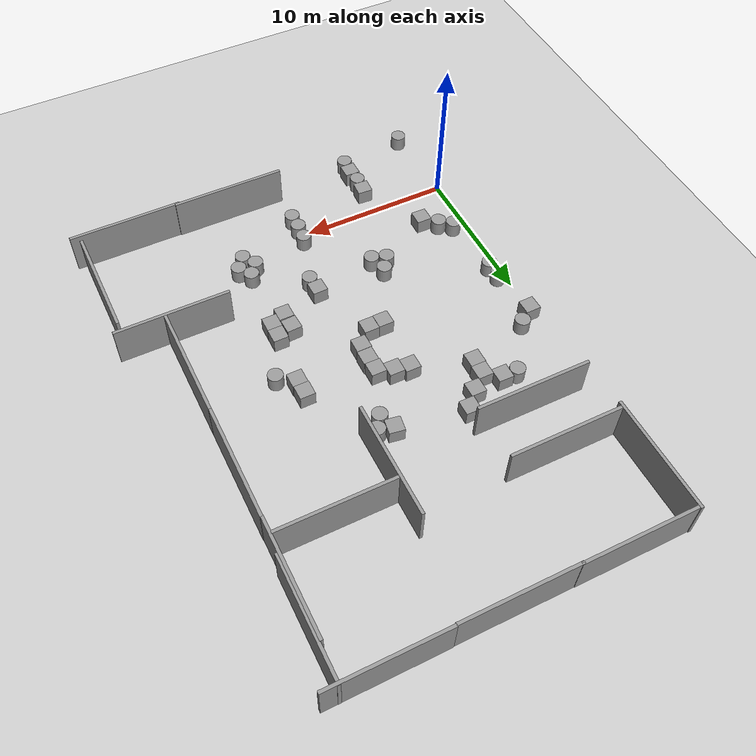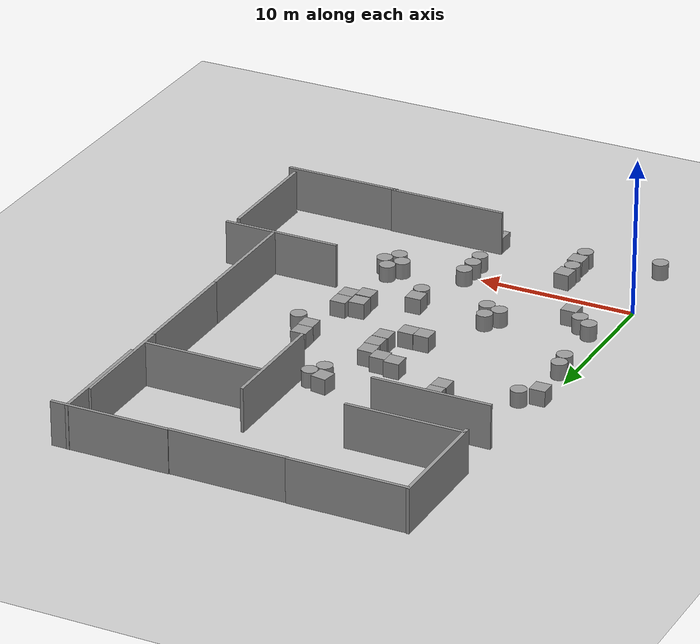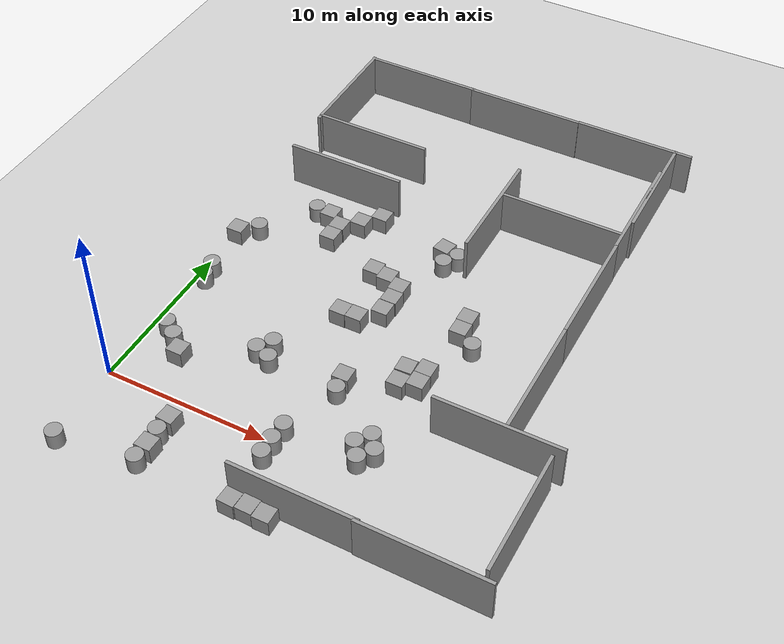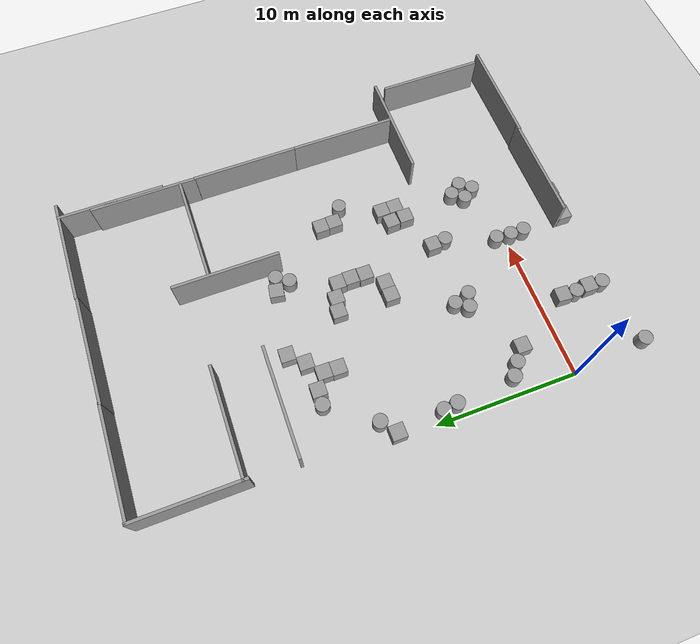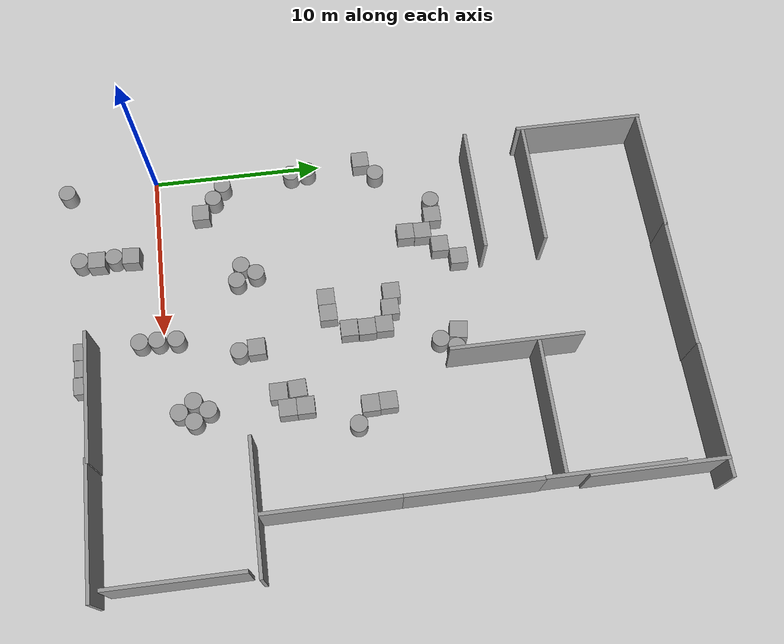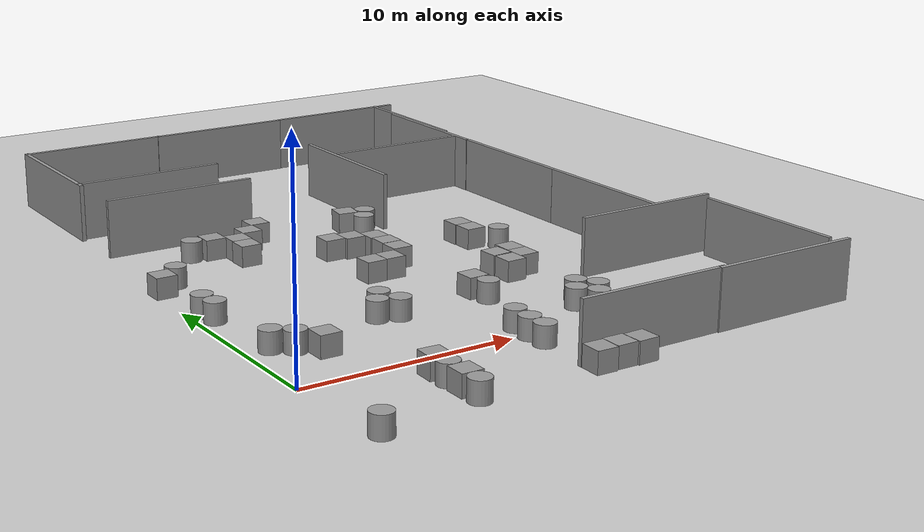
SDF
<sdf version="1.6">
 <world name="default">
  <model name="ground_plane">
   <static>1</static>
   <link name="link">
    <collision name="collision">
     <geometry><plane><normal>0 0 1</normal><size>100 100</size></plane></geometry>
     <surface><friction><ode><mu>100</mu><mu2>50</mu2></ode></friction></surface>
    </collision>
    <visual name="visual">
     <cast_shadows>0</cast_shadows>
     <geometry><plane><normal>0 0 1</normal><size>100 100</size></plane></geometry>
     <material>
      <script><uri>file://media/materials/scripts/gazebo.material</uri><name>Gazebo/Grey</name></script>
     </material>
    </visual>
   </link>
  </model>
  <model name="unit_cylinder_0">
   <pose>10.6658 -0.256071 0.499942 0 0 -3.1e-05</pose>
   <link name="link">
    <inertial>
     <mass>1</mass>
     <inertia><ixx>0.145833</ixx><ixy>0</ixy><ixz>0</ixz><iyy>0.145833</iyy><iyz>0</iyz><izz>0.125</izz></inertia>
    </inertial>
    <collision name="collision">
     <geometry><cylinder><radius>0.5</radius><length>1</length></cylinder></geometry>
    </collision>
    <visual name="visual">
     <geometry><cylinder><radius>0.5</radius><length>1</length></cylinder></geometry>
     <material>
      <script><name>Gazebo/Grey</name><uri>file://media/materials/scripts/gazebo.material</uri></script>
     </material>
    </visual>
   </link>
  </model>
  <model name="unit_cylinder_3">
   <pose>10.6756 -1.25603 0.499942 0 0 -5.6e-05</pose>
   <link name="link">
    <inertial>
     <mass>1</mass>
     <inertia><ixx>0.145833</ixx><ixy>0</ixy><ixz>0</ixz><iyy>0.145833</iyy><iyz>0</iyz><izz>0.125</izz></inertia>
    </inertial>
    <collision name="collision">
     <geometry><cylinder><radius>0.5</radius><length>1</length></cylinder></geometry>
    </collision>
    <visual name="visual">
     <geometry><cylinder><radius>0.5</radius><length>1</length></cylinder></geometry>
     <material>
      <script><name>Gazebo/Grey</name><uri>file://media/materials/scripts/gazebo.material</uri></script>
     </material>
    </visual>
   </link>
  </model>
  <model name="unit_cylinder_4">
   <pose>10.7381 0.821389 0.499942 0 -0 0</pose>
   <link name="link">
    <inertial>
     <mass>1</mass>
     <inertia><ixx>0.145833</ixx><ixy>0</ixy><ixz>0</ixz><iyy>0.145833</iyy><iyz>0</iyz><izz>0.125</izz></inertia>
    </inertial>
    <collision name="collision">
     <geometry><cylinder><radius>0.5</radius><length>1</length></cylinder></geometry>
    </collision>
    <visual name="visual">
     <geometry><cylinder><radius>0.5</radius><length>1</length></cylinder></geometry>
     <material>
      <script><name>Gazebo/Grey</name><uri>file://media/materials/scripts/gazebo.material</uri></script>
     </material>
    </visual>
   </link>
  </model>
  <model name="unit_box_9">
   <pose>2.80573 2.69051 0.5 0 0 -0.00823</pose>
   <link name="link">
    <inertial>
     <mass>1</mass>
     <inertia>
      <ixx>0.166667</ixx>
      <ixy>0</ixy>
      <ixz>0</ixz>
      <iyy>0.166667</iyy>
      <iyz>0</iyz>
      <izz>0.166667</izz>
     </inertia>
    </inertial>
    <collision name="collision"><geometry><box><size>1 1 1</size></box></geometry></collision>
    <visual name="visual">
     <geometry><box><size>1 1 1</size></box></geometry>
     <material>
      <script><name>Gazebo/Grey</name><uri>file://media/materials/scripts/gazebo.material</uri></script>
     </material>
    </visual>
   </link>
  </model>
  <model name="unit_box_12">
   <pose>5.15719 -1.54455 0.5 0 0 -0.056719</pose>
   <link name="link">
    <inertial>
     <mass>1</mass>
     <inertia>
      <ixx>0.166667</ixx>
      <ixy>0</ixy>
      <ixz>0</ixz>
      <iyy>0.166667</iyy>
      <iyz>0</iyz>
      <izz>0.166667</izz>
     </inertia>
    </inertial>
    <collision name="collision"><geometry><box><size>1 1 1</size></box></geometry></collision>
    <visual name="visual">
     <geometry><box><size>1 1 1</size></box></geometry>
     <material>
      <script><name>Gazebo/Grey</name><uri>file://media/materials/scripts/gazebo.material</uri></script>
     </material>
    </visual>
   </link>
  </model>
  <model name="unit_cylinder_8_1">
   <pose>5.09818 -2.54286 0.499942 0 0 -0.000551</pose>
   <link name="link">
    <inertial>
     <mass>1</mass>
     <inertia><ixx>0.145833</ixx><ixy>0</ixy><ixz>0</ixz><iyy>0.145833</iyy><iyz>0</iyz><izz>0.125</izz></inertia>
    </inertial>
    <collision name="collision">
     <geometry><cylinder><radius>0.5</radius><length>1</length></cylinder></geometry>
    </collision>
    <visual name="visual">
     <geometry><cylinder><radius>0.5</radius><length>1</length></cylinder></geometry>
     <material>
      <script><name>Gazebo/Grey</name><uri>file://media/materials/scripts/gazebo.material</uri></script>
     </material>
    </visual>
   </link>
  </model>
  <model name="unit_box_13">
   <pose>5.186 -3.54449 0.5 0 0 -0.016738</pose>
   <link name="link">
    <inertial>
     <mass>1</mass>
     <inertia>
      <ixx>0.166667</ixx>
      <ixy>0</ixy>
      <ixz>0</ixz>
      <iyy>0.166667</iyy>
      <iyz>0</iyz>
      <izz>0.166667</izz>
     </inertia>
    </inertial>
    <collision name="collision"><geometry><box><size>1 1 1</size></box></geometry></collision>
    <visual name="visual">
     <geometry><box><size>1 1 1</size></box></geometry>
     <material>
      <script><name>Gazebo/Grey</name><uri>file://media/materials/scripts/gazebo.material</uri></script>
     </material>
    </visual>
   </link>
  </model>
  <model name="unit_cylinder_8_2">
   <pose>5.13166 -4.54376 0.499942 0 0 -0.000328</pose>
   <link name="link">
    <inertial>
     <mass>1</mass>
     <inertia><ixx>0.145833</ixx><ixy>0</ixy><ixz>0</ixz><iyy>0.145833</iyy><iyz>0</iyz><izz>0.125</izz></inertia>
    </inertial>
    <collision name="collision">
     <geometry><cylinder><radius>0.5</radius><length>1</length></cylinder></geometry>
    </collision>
    <visual name="visual">
     <geometry><cylinder><radius>0.5</radius><length>1</length></cylinder></geometry>
     <material>
      <script><name>Gazebo/Grey</name><uri>file://media/materials/scripts/gazebo.material</uri></script>
     </material>
    </visual>
   </link>
  </model>
  <model name="unit_box_23">
   <pose>9.27784 13.3025 0.5 0 0 -0.004142</pose>
   <link name="link">
    <inertial>
     <mass>1</mass>
     <inertia>
      <ixx>0.166667</ixx>
      <ixy>0</ixy>
      <ixz>0</ixz>
      <iyy>0.166667</iyy>
      <iyz>0</iyz>
      <izz>0.166667</izz>
     </inertia>
    </inertial>
    <collision name="collision"><geometry><box><size>1 1 1</size></box></geometry></collision>
    <visual name="visual">
     <geometry><box><size>1 1 1</size></box></geometry>
     <material>
      <script><name>Gazebo/Grey</name><uri>file://media/materials/scripts/gazebo.material</uri></script>
     </material>
    </visual>
   </link>
  </model>
  <model name="unit_cylinder_13">
   <pose>14.5459 1.57194 0.499942 0 -0 0.013715</pose>
   <link name="link">
    <inertial>
     <mass>1</mass>
     <inertia><ixx>0.145833</ixx><ixy>0</ixy><ixz>0</ixz><iyy>0.145833</iyy><iyz>0</iyz><izz>0.125</izz></inertia>
    </inertial>
    <collision name="collision">
     <geometry><cylinder><radius>0.5</radius><length>1</length></cylinder></geometry>
    </collision>
    <visual name="visual">
     <geometry><cylinder><radius>0.5</radius><length>1</length></cylinder></geometry>
     <material>
      <script><name>Gazebo/Grey</name><uri>file://media/materials/scripts/gazebo.material</uri></script>
     </material>
    </visual>
   </link>
  </model>
  <model name="unit_cylinder_19">
   <pose>15.725 1.55357 0.499942 0 -0 0.002059</pose>
   <link name="link">
    <inertial>
     <mass>1</mass>
     <inertia><ixx>0.145833</ixx><ixy>0</ixy><ixz>0</ixz><iyy>0.145833</iyy><iyz>0</iyz><izz>0.125</izz></inertia>
    </inertial>
    <collision name="collision">
     <geometry><cylinder><radius>0.5</radius><length>1</length></cylinder></geometry>
    </collision>
    <visual name="visual">
     <geometry><cylinder><radius>0.5</radius><length>1</length></cylinder></geometry>
     <material>
      <script><name>Gazebo/Grey</name><uri>file://media/materials/scripts/gazebo.material</uri></script>
     </material>
    </visual>
   </link>
  </model>
  <model name="unit_box_30">
   <pose>15.8822 11.2878 0.5 0 -0 0.004435</pose>
   <link name="link">
    <inertial>
     <mass>1</mass>
     <inertia>
      <ixx>0.166667</ixx>
      <ixy>0</ixy>
      <ixz>0</ixz>
      <iyy>0.166667</iyy>
      <iyz>0</iyz>
      <izz>0.166667</izz>
     </inertia>
    </inertial>
    <collision name="collision"><geometry><box><size>1 1 1</size></box></geometry></collision>
    <visual name="visual">
     <geometry><box><size>1 1 1</size></box></geometry>
     <material>
      <script><name>Gazebo/Grey</name><uri>file://media/materials/scripts/gazebo.material</uri></script>
     </material>
    </visual>
   </link>
  </model>
  <model name="unit_cylinder_20">
   <pose>16.9697 10.5115 0.499942 0 -0 0</pose>
   <link name="link">
    <inertial>
     <mass>1</mass>
     <inertia><ixx>0.145833</ixx><ixy>0</ixy><ixz>0</ixz><iyy>0.145833</iyy><iyz>0</iyz><izz>0.125</izz></inertia>
    </inertial>
    <collision name="collision">
     <geometry><cylinder><radius>0.5</radius><length>1</length></cylinder></geometry>
    </collision>
    <visual name="visual">
     <geometry><cylinder><radius>0.5</radius><length>1</length></cylinder></geometry>
     <material>
      <script><name>Gazebo/Grey</name><uri>file://media/materials/scripts/gazebo.material</uri></script>
     </material>
    </visual>
   </link>
  </model>
  <model name="unit_box_32">
   <pose>10.2771 13.1126 0.5 0 0 -0.00417</pose>
   <link name="link">
    <inertial>
     <mass>1</mass>
     <inertia>
      <ixx>0.166667</ixx>
      <ixy>0</ixy>
      <ixz>0</ixz>
      <iyy>0.166667</iyy>
      <iyz>0</iyz>
      <izz>0.166667</izz>
     </inertia>
    </inertial>
    <collision name="collision"><geometry><box><size>1 1 1</size></box></geometry></collision>
    <visual name="visual">
     <geometry><box><size>1 1 1</size></box></geometry>
     <material>
      <script><name>Gazebo/Grey</name><uri>file://media/materials/scripts/gazebo.material</uri></script>
     </material>
    </visual>
   </link>
  </model>
  <model name="unit_box_24_0">
   <pose>14.5253 7.36912 0.5 0 -0 0.049836</pose>
   <link name="link">
    <inertial>
     <mass>1</mass>
     <inertia>
      <ixx>0.166667</ixx>
      <ixy>0</ixy>
      <ixz>0</ixz>
      <iyy>0.166667</iyy>
      <iyz>0</iyz>
      <izz>0.166667</izz>
     </inertia>
    </inertial>
    <collision name="collision"><geometry><box><size>1 1 1</size></box></geometry></collision>
    <visual name="visual">
     <geometry><box><size>1 1 1</size></box></geometry>
     <material>
      <script><name>Gazebo/Grey</name><uri>file://media/materials/scripts/gazebo.material</uri></script>
     </material>
    </visual>
   </link>
  </model>
  <model name="unit_box_24_1">
   <pose>14.5739 6.30414 0.5 0 -0 0.003533</pose>
   <link name="link">
    <inertial>
     <mass>1</mass>
     <inertia>
      <ixx>0.166667</ixx>
      <ixy>0</ixy>
      <ixz>0</ixz>
      <iyy>0.166667</iyy>
      <iyz>0</iyz>
      <izz>0.166667</izz>
     </inertia>
    </inertial>
    <collision name="collision"><geometry><box><size>1 1 1</size></box></geometry></collision>
    <visual name="visual">
     <geometry><box><size>1 1 1</size></box></geometry>
     <material>
      <script><name>Gazebo/Grey</name><uri>file://media/materials/scripts/gazebo.material</uri></script>
     </material>
    </visual>
   </link>
  </model>
  <model name="unit_box_20_1">
   <pose>12.1469 16.8043 0.5 0 0 -0.153938</pose>
   <link name="link">
    <inertial>
     <mass>1</mass>
     <inertia>
      <ixx>0.166667</ixx>
      <ixy>0</ixy>
      <ixz>0</ixz>
      <iyy>0.166667</iyy>
      <iyz>0</iyz>
      <izz>0.166667</izz>
     </inertia>
    </inertial>
    <collision name="collision"><geometry><box><size>1 1 1</size></box></geometry></collision>
    <visual name="visual">
     <geometry><box><size>1 1 1</size></box></geometry>
     <material>
      <script><name>Gazebo/Grey</name><uri>file://media/materials/scripts/gazebo.material</uri></script>
     </material>
    </visual>
   </link>
  </model>
  <model name="unit_cylinder_43">
   <pose>13.1335 16.5527 0.499942 0 -0 0.038735</pose>
   <link name="link">
    <inertial>
     <mass>1</mass>
     <inertia><ixx>0.145833</ixx><ixy>0</ixy><ixz>0</ixz><iyy>0.145833</iyy><iyz>0</iyz><izz>0.125</izz></inertia>
    </inertial>
    <collision name="collision">
     <geometry><cylinder><radius>0.5</radius><length>1</length></cylinder></geometry>
    </collision>
    <visual name="visual">
     <geometry><cylinder><radius>0.5</radius><length>1</length></cylinder></geometry>
     <material>
      <script><name>Gazebo/Grey</name><uri>file://media/materials/scripts/gazebo.material</uri></script>
     </material>
    </visual>
   </link>
  </model>
  <model name="unit_cylinder_44">
   <pose>12.5787 15.7207 0.499942 0 -0 0.000156</pose>
   <link name="link">
    <inertial>
     <mass>1</mass>
     <inertia><ixx>0.145833</ixx><ixy>0</ixy><ixz>0</ixz><iyy>0.145833</iyy><iyz>0</iyz><izz>0.125</izz></inertia>
    </inertial>
    <collision name="collision">
     <geometry><cylinder><radius>0.5</radius><length>1</length></cylinder></geometry>
    </collision>
    <visual name="visual">
     <geometry><cylinder><radius>0.5</radius><length>1</length></cylinder></geometry>
     <material>
      <script><name>Gazebo/Grey</name><uri>file://media/materials/scripts/gazebo.material</uri></script>
     </material>
    </visual>
   </link>
  </model>
  <model name="unit_box_20">
   <pose>15.846 12.2877 0.5 0 -0 0.004439</pose>
   <link name="link">
    <inertial>
     <mass>1</mass>
     <inertia>
      <ixx>0.166667</ixx>
      <ixy>0</ixy>
      <ixz>0</ixz>
      <iyy>0.166667</iyy>
      <iyz>0</iyz>
      <izz>0.166667</izz>
     </inertia>
    </inertial>
    <collision name="collision"><geometry><box><size>1 1 1</size></box></geometry></collision>
    <visual name="visual">
     <geometry><box><size>1 1 1</size></box></geometry>
     <material>
      <script><name>Gazebo/Grey</name><uri>file://media/materials/scripts/gazebo.material</uri></script>
     </material>
    </visual>
   </link>
  </model>
  <model name="unit_box_31_0">
   <pose>15.5731 6.71888 0.5 0 -0 0.002358</pose>
   <link name="link">
    <inertial>
     <mass>1</mass>
     <inertia>
      <ixx>0.166667</ixx>
      <ixy>0</ixy>
      <ixz>0</ixz>
      <iyy>0.166667</iyy>
      <iyz>0</iyz>
      <izz>0.166667</izz>
     </inertia>
    </inertial>
    <collision name="collision"><geometry><box><size>1 1 1</size></box></geometry></collision>
    <visual name="visual">
     <geometry><box><size>1 1 1</size></box></geometry>
     <material>
      <script><name>Gazebo/Grey</name><uri>file://media/materials/scripts/gazebo.material</uri></script>
     </material>
    </visual>
   </link>
  </model>
  <model name="unit_cylinder_10">
   <pose>1.90958 3.49435 0.499942 0 -0 0.005413</pose>
   <link name="link">
    <inertial>
     <mass>1</mass>
     <inertia><ixx>0.145833</ixx><ixy>0</ixy><ixz>0</ixz><iyy>0.145833</iyy><iyz>0</iyz><izz>0.125</izz></inertia>
    </inertial>
    <collision name="collision">
     <geometry><cylinder><radius>0.5</radius><length>1</length></cylinder></geometry>
    </collision>
    <visual name="visual">
     <geometry><cylinder><radius>0.5</radius><length>1</length></cylinder></geometry>
     <material>
      <script><name>Gazebo/Grey</name><uri>file://media/materials/scripts/gazebo.material</uri></script>
     </material>
    </visual>
   </link>
  </model>
  <model name="unit_cylinder_22">
   <pose>1.08401 4.0887 0.499942 0 -0 0</pose>
   <link name="link">
    <inertial>
     <mass>1</mass>
     <inertia><ixx>0.145833</ixx><ixy>0</ixy><ixz>0</ixz><iyy>0.145833</iyy><iyz>0</iyz><izz>0.125</izz></inertia>
    </inertial>
    <collision name="collision">
     <geometry><cylinder><radius>0.5</radius><length>1</length></cylinder></geometry>
    </collision>
    <visual name="visual">
     <geometry><cylinder><radius>0.5</radius><length>1</length></cylinder></geometry>
     <material>
      <script><name>Gazebo/Grey</name><uri>file://media/materials/scripts/gazebo.material</uri></script>
     </material>
    </visual>
   </link>
  </model>
  <model name="unit_box_0">
   <pose>7.53704 17.5432 0.5 0 0 -0.0158</pose>
   <link name="link">
    <inertial>
     <mass>1</mass>
     <inertia>
      <ixx>0.166667</ixx>
      <ixy>0</ixy>
      <ixz>0</ixz>
      <iyy>0.166667</iyy>
      <iyz>0</iyz>
      <izz>0.166667</izz>
     </inertia>
    </inertial>
    <collision name="collision"><geometry><box><size>1 1 1</size></box></geometry></collision>
    <visual name="visual">
     <geometry><box><size>1 1 1</size></box></geometry>
     <material>
      <script><name>Gazebo/Grey</name><uri>file://media/materials/scripts/gazebo.material</uri></script>
     </material>
    </visual>
   </link>
  </model>
  <model name="unit_box_4">
   <pose>11.2759 12.6514 0.5 0 0 -0.002906</pose>
   <link name="link">
    <inertial>
     <mass>1</mass>
     <inertia>
      <ixx>0.166667</ixx>
      <ixy>0</ixy>
      <ixz>0</ixz>
      <iyy>0.166667</iyy>
      <iyz>0</iyz>
      <izz>0.166667</izz>
     </inertia>
    </inertial>
    <collision name="collision"><geometry><box><size>1 1 1</size></box></geometry></collision>
    <visual name="visual">
     <geometry><box><size>1 1 1</size></box></geometry>
     <material>
      <script><name>Gazebo/Grey</name><uri>file://media/materials/scripts/gazebo.material</uri></script>
     </material>
    </visual>
   </link>
  </model>
  <model name="unit_cylinder_5_0">
   <pose>0.466694 -5.21374 0.499942 0 0 -0.04434</pose>
   <link name="link">
    <inertial>
     <mass>1</mass>
     <inertia><ixx>0.145833</ixx><ixy>0</ixy><ixz>0</ixz><iyy>0.145833</iyy><iyz>0</iyz><izz>0.125</izz></inertia>
    </inertial>
    <collision name="collision">
     <geometry><cylinder><radius>0.5</radius><length>1</length></cylinder></geometry>
    </collision>
    <visual name="visual">
     <geometry><cylinder><radius>0.5</radius><length>1</length></cylinder></geometry>
     <material>
      <script><name>Gazebo/Grey</name><uri>file://media/materials/scripts/gazebo.material</uri></script>
     </material>
    </visual>
   </link>
  </model>
  <model name="unit_box_22">
   <pose>6.61688 16.5559 0.5 0 0 -0.012365</pose>
   <link name="link">
    <inertial>
     <mass>1</mass>
     <inertia>
      <ixx>0.166667</ixx>
      <ixy>0</ixy>
      <ixz>0</ixz>
      <iyy>0.166667</iyy>
      <iyz>0</iyz>
      <izz>0.166667</izz>
     </inertia>
    </inertial>
    <collision name="collision"><geometry><box><size>1 1 1</size></box></geometry></collision>
    <visual name="visual">
     <geometry><box><size>1 1 1</size></box></geometry>
     <material>
      <script><name>Gazebo/Grey</name><uri>file://media/materials/scripts/gazebo.material</uri></script>
     </material>
    </visual>
   </link>
  </model>
  <model name="unit_box_29">
   <pose>5.60779 15.653 0.5 0 0 -0.005281</pose>
   <link name="link">
    <inertial>
     <mass>1</mass>
     <inertia>
      <ixx>0.166667</ixx>
      <ixy>0</ixy>
      <ixz>0</ixz>
      <iyy>0.166667</iyy>
      <iyz>0</iyz>
      <izz>0.166667</izz>
     </inertia>
    </inertial>
    <collision name="collision"><geometry><box><size>1 1 1</size></box></geometry></collision>
    <visual name="visual">
     <geometry><box><size>1 1 1</size></box></geometry>
     <material>
      <script><name>Gazebo/Grey</name><uri>file://media/materials/scripts/gazebo.material</uri></script>
     </material>
    </visual>
   </link>
  </model>
  <model name="unit_box_31">
   <pose>4.61246 16.3778 0.5 0 0 -0.009287</pose>
   <link name="link">
    <inertial>
     <mass>1</mass>
     <inertia>
      <ixx>0.166667</ixx>
      <ixy>0</ixy>
      <ixz>0</ixz>
      <iyy>0.166667</iyy>
      <iyz>0</iyz>
      <izz>0.166667</izz>
     </inertia>
    </inertial>
    <collision name="collision"><geometry><box><size>1 1 1</size></box></geometry></collision>
    <visual name="visual">
     <geometry><box><size>1 1 1</size></box></geometry>
     <material>
      <script><name>Gazebo/Grey</name><uri>file://media/materials/scripts/gazebo.material</uri></script>
     </material>
    </visual>
   </link>
  </model>
  <model name="unit_box_43">
   <pose>5.56564 14.6525 0.5 0 0 -0.003893</pose>
   <link name="link">
    <inertial>
     <mass>1</mass>
     <inertia>
      <ixx>0.166667</ixx>
      <ixy>0</ixy>
      <ixz>0</ixz>
      <iyy>0.166667</iyy>
      <iyz>0</iyz>
      <izz>0.166667</izz>
     </inertia>
    </inertial>
    <collision name="collision"><geometry><box><size>1 1 1</size></box></geometry></collision>
    <visual name="visual">
     <geometry><box><size>1 1 1</size></box></geometry>
     <material>
      <script><name>Gazebo/Grey</name><uri>file://media/materials/scripts/gazebo.material</uri></script>
     </material>
    </visual>
   </link>
  </model>
  <model name="unit_cylinder_12">
   <pose>7.12767 5.6329 0.499942 0 0 -0.103867</pose>
   <link name="link">
    <inertial>
     <mass>1</mass>
     <inertia><ixx>0.145833</ixx><ixy>0</ixy><ixz>0</ixz><iyy>0.145833</iyy><iyz>0</iyz><izz>0.125</izz></inertia>
    </inertial>
    <collision name="collision">
     <geometry><cylinder><radius>0.5</radius><length>1</length></cylinder></geometry>
    </collision>
    <visual name="visual">
     <geometry><cylinder><radius>0.5</radius><length>1</length></cylinder></geometry>
     <material>
      <script><name>Gazebo/Grey</name><uri>file://media/materials/scripts/gazebo.material</uri></script>
     </material>
    </visual>
   </link>
  </model>
  <model name="unit_cylinder_25">
   <pose>7.49491 4.49832 0.499942 0 -0 0.053417</pose>
   <link name="link">
    <inertial>
     <mass>1</mass>
     <inertia><ixx>0.145833</ixx><ixy>0</ixy><ixz>0</ixz><iyy>0.145833</iyy><iyz>0</iyz><izz>0.125</izz></inertia>
    </inertial>
    <collision name="collision">
     <geometry><cylinder><radius>0.5</radius><length>1</length></cylinder></geometry>
    </collision>
    <visual name="visual">
     <geometry><cylinder><radius>0.5</radius><length>1</length></cylinder></geometry>
     <material>
      <script><name>Gazebo/Grey</name><uri>file://media/materials/scripts/gazebo.material</uri></script>
     </material>
    </visual>
   </link>
  </model>
  <model name="unit_cylinder_30">
   <pose>6.54654 4.81575 0.499942 0 0 -0.04903</pose>
   <link name="link">
    <inertial>
     <mass>1</mass>
     <inertia><ixx>0.145833</ixx><ixy>0</ixy><ixz>0</ixz><iyy>0.145833</iyy><iyz>0</iyz><izz>0.125</izz></inertia>
    </inertial>
    <collision name="collision">
     <geometry><cylinder><radius>0.5</radius><length>1</length></cylinder></geometry>
    </collision>
    <visual name="visual">
     <geometry><cylinder><radius>0.5</radius><length>1</length></cylinder></geometry>
     <material>
      <script><name>Gazebo/Grey</name><uri>file://media/materials/scripts/gazebo.material</uri></script>
     </material>
    </visual>
   </link>
  </model>
  <model name="grey_wall_1">
   <static>1</static>
   <link name="link">
    <pose>0 0 1.4 0 -0 0</pose>
    <collision name="collision"><geometry><box><size>7.5 0.2 2.8</size></box></geometry></collision>
    <visual name="visual">
     <cast_shadows>0</cast_shadows>
     <geometry><box><size>7.5 0.2 2.8</size></box></geometry>
     <material>
      <script>
       <uri>model://grey_wall/materials/scripts</uri>
       <uri>model://grey_wall/materials/textures</uri>
       <name>vrc/grey_wall</name>
      </script>
     </material>
    </visual>
   </link>
   <pose>21.6087 16.0008 0 0 -0 1.5714</pose>
  </model>
  <model name="grey_wall_1_clone">
   <static>1</static>
   <link name="link">
    <pose>0 0 1.4 0 -0 0</pose>
    <collision name="collision"><geometry><box><size>7.5 0.2 2.8</size></box></geometry></collision>
    <visual name="visual">
     <cast_shadows>0</cast_shadows>
     <geometry><box><size>7.5 0.2 2.8</size></box></geometry>
     <material>
      <script>
       <uri>model://grey_wall/materials/scripts</uri>
       <uri>model://grey_wall/materials/textures</uri>
       <name>vrc/grey_wall</name>
      </script>
     </material>
    </visual>
   </link>
   <pose>21.6155 8.51726 0 0 -0 1.5714</pose>
  </model>
  <model name="grey_wall_1_clone_0">
   <static>1</static>
   <link name="link">
    <pose>0 0 1.4 0 -0 0</pose>
    <collision name="collision"><geometry><box><size>7.5 0.2 2.8</size></box></geometry></collision>
    <visual name="visual">
     <cast_shadows>0</cast_shadows>
     <geometry><box><size>7.5 0.2 2.8</size></box></geometry>
     <material>
      <script>
       <uri>model://grey_wall/materials/scripts</uri>
       <uri>model://grey_wall/materials/textures</uri>
       <name>vrc/grey_wall</name>
      </script>
     </material>
    </visual>
   </link>
   <pose>21.5785 23.4288 0 0 -0 1.5714</pose>
  </model>
  <model name="grey_wall_1_clone_1">
   <static>1</static>
   <link name="link">
    <pose>0 0 1.4 0 -0 0</pose>
    <collision name="collision"><geometry><box><size>7.5 0.2 2.8</size></box></geometry></collision>
    <visual name="visual">
     <cast_shadows>0</cast_shadows>
     <geometry><box><size>7.5 0.2 2.8</size></box></geometry>
     <material>
      <script>
       <uri>model://grey_wall/materials/scripts</uri>
       <uri>model://grey_wall/materials/textures</uri>
       <name>vrc/grey_wall</name>
      </script>
     </material>
    </visual>
   </link>
   <pose>0.516592 25.7514 0 0 -0 1.5714</pose>
  </model>
  <model name="grey_wall_0_clone">
   <static>1</static>
   <link name="link">
    <pose>0 0 1.4 0 -0 0</pose>
    <collision name="collision"><geometry><box><size>7.5 0.2 2.8</size></box></geometry></collision>
    <visual name="visual">
     <cast_shadows>0</cast_shadows>
     <geometry><box><size>7.5 0.2 2.8</size></box></geometry>
     <material>
      <script>
       <uri>model://grey_wall/materials/scripts</uri>
       <uri>model://grey_wall/materials/textures</uri>
       <name>vrc/grey_wall</name>
      </script>
     </material>
    </visual>
   </link>
   <pose>4.24118 29.3565 0 0 -0 0</pose>
  </model>
  <model name="grey_wall_0_clone_0">
   <static>1</static>
   <link name="link">
    <pose>0 0 1.4 0 -0 0</pose>
    <collision name="collision"><geometry><box><size>7.5 0.2 2.8</size></box></geometry></collision>
    <visual name="visual">
     <cast_shadows>0</cast_shadows>
     <geometry><box><size>7.5 0.2 2.8</size></box></geometry>
     <material>
      <script>
       <uri>model://grey_wall/materials/scripts</uri>
       <uri>model://grey_wall/materials/textures</uri>
       <name>vrc/grey_wall</name>
      </script>
     </material>
    </visual>
   </link>
   <pose>11.5683 29.329 0 0 -0 0</pose>
  </model>
  <model name="grey_wall_0_clone_1">
   <static>1</static>
   <link name="link">
    <pose>0 0 1.4 0 -0 0</pose>
    <collision name="collision"><geometry><box><size>7.5 0.2 2.8</size></box></geometry></collision>
    <visual name="visual">
     <cast_shadows>0</cast_shadows>
     <geometry><box><size>7.5 0.2 2.8</size></box></geometry>
     <material>
      <script>
       <uri>model://grey_wall/materials/scripts</uri>
       <uri>model://grey_wall/materials/textures</uri>
       <name>vrc/grey_wall</name>
      </script>
     </material>
    </visual>
   </link>
   <pose>19.0385 29.3688 0 0 -0 0</pose>
  </model>
  <model name="grey_wall_1_clone_0_clone">
   <static>1</static>
   <link name="link">
    <pose>0 0 1.4 0 -0 0</pose>
    <collision name="collision"><geometry><box><size>7.5 0.2 2.8</size></box></geometry></collision>
    <visual name="visual">
     <cast_shadows>0</cast_shadows>
     <geometry><box><size>7.5 0.2 2.8</size></box></geometry>
     <material>
      <script>
       <uri>model://grey_wall/materials/scripts</uri>
       <uri>model://grey_wall/materials/textures</uri>
       <name>vrc/grey_wall</name>
      </script>
     </material>
    </visual>
   </link>
   <pose>21.7322 25.7373 0 0 -0 1.5714</pose>
  </model>
  <model name="grey_wall_0_clone_0_clone">
   <static>1</static>
   <link name="link">
    <pose>0 0 1.4 0 -0 0</pose>
    <collision name="collision"><geometry><box><size>7.5 0.2 2.8</size></box></geometry></collision>
    <visual name="visual">
     <cast_shadows>0</cast_shadows>
     <geometry><box><size>7.5 0.2 2.8</size></box></geometry>
     <material>
      <script>
       <uri>model://grey_wall/materials/scripts</uri>
       <uri>model://grey_wall/materials/textures</uri>
       <name>vrc/grey_wall</name>
      </script>
     </material>
    </visual>
   </link>
   <pose>17.7712 20.805 0 0 -0 0</pose>
  </model>
  <model name="grey_wall_0_clone_0_clone_0">
   <static>1</static>
   <link name="link">
    <pose>0 0 1.4 0 -0 0</pose>
    <collision name="collision"><geometry><box><size>7.5 0.2 2.8</size></box></geometry></collision>
    <visual name="visual">
     <cast_shadows>0</cast_shadows>
     <geometry><box><size>7.5 0.2 2.8</size></box></geometry>
     <material>
      <script>
       <uri>model://grey_wall/materials/scripts</uri>
       <uri>model://grey_wall/materials/textures</uri>
       <name>vrc/grey_wall</name>
      </script>
     </material>
    </visual>
   </link>
   <pose>4.18814 22.3563 0 0 -0 0</pose>
  </model>
  <model name="grey_wall_0_clone_0_clone_1">
   <static>1</static>
   <link name="link">
    <pose>0 0 1.4 0 -0 0</pose>
    <collision name="collision"><geometry><box><size>7.5 0.2 2.8</size></box></geometry></collision>
    <visual name="visual">
     <cast_shadows>0</cast_shadows>
     <geometry><box><size>7.5 0.2 2.8</size></box></geometry>
     <material>
      <script>
       <uri>model://grey_wall/materials/scripts</uri>
       <uri>model://grey_wall/materials/textures</uri>
       <name>vrc/grey_wall</name>
      </script>
     </material>
    </visual>
   </link>
   <pose>4.2527 18.8724 0 0 -0 0</pose>
  </model>
  <model name="grey_wall_1_clone_2">
   <static>1</static>
   <link name="link">
    <pose>0 0 1.4 0 -0 0</pose>
    <collision name="collision"><geometry><box><size>7.5 0.2 2.8</size></box></geometry></collision>
    <visual name="visual">
     <cast_shadows>0</cast_shadows>
     <geometry><box><size>7.5 0.2 2.8</size></box></geometry>
     <material>
      <script>
       <uri>model://grey_wall/materials/scripts</uri>
       <uri>model://grey_wall/materials/textures</uri>
       <name>vrc/grey_wall</name>
      </script>
     </material>
    </visual>
   </link>
   <pose>13.916 19.616 0 0 -0 1.5714</pose>
  </model>
  <model name="grey_wall_0_clone_0_clone_1_clone_0">
   <static>1</static>
   <link name="link">
    <pose>0 0 1.4 0 -0 0</pose>
    <collision name="collision"><geometry><box><size>7.5 0.2 2.8</size></box></geometry></collision>
    <visual name="visual">
     <cast_shadows>0</cast_shadows>
     <geometry><box><size>7.5 0.2 2.8</size></box></geometry>
     <material>
      <script>
       <uri>model://grey_wall/materials/scripts</uri>
       <uri>model://grey_wall/materials/textures</uri>
       <name>vrc/grey_wall</name>
      </script>
     </material>
    </visual>
   </link>
   <pose>14.1277 -3.82587 0 0 -0 0</pose>
  </model>
  <model name="grey_wall_0_clone_0_clone_1_clone_1">
   <static>1</static>
   <link name="link">
    <pose>0 0 1.4 0 -0 0</pose>
    <collision name="collision"><geometry><box><size>7.5 0.2 2.8</size></box></geometry></collision>
    <visual name="visual">
     <cast_shadows>0</cast_shadows>
     <geometry><box><size>7.5 0.2 2.8</size></box></geometry>
     <material>
      <script>
       <uri>model://grey_wall/materials/scripts</uri>
       <uri>model://grey_wall/materials/textures</uri>
       <name>vrc/grey_wall</name>
      </script>
     </material>
    </visual>
   </link>
   <pose>21.2859 -3.89259 0 0 -0 0</pose>
  </model>
  <model name="grey_wall_0_clone_0_clone_1_clone_2">
   <static>1</static>
   <link name="link">
    <pose>0 0 1.4 0 -0 0</pose>
    <collision name="collision"><geometry><box><size>7.5 0.2 2.8</size></box></geometry></collision>
    <visual name="visual">
     <cast_shadows>0</cast_shadows>
     <geometry><box><size>7.5 0.2 2.8</size></box></geometry>
     <material>
      <script>
       <uri>model://grey_wall/materials/scripts</uri>
       <uri>model://grey_wall/materials/textures</uri>
       <name>vrc/grey_wall</name>
      </script>
     </material>
    </visual>
   </link>
   <pose>21.1496 4.68093 0 0 -0 0</pose>
  </model>
  <model name="grey_wall_1_clone_clone_1">
   <static>1</static>
   <link name="link">
    <pose>0 0 1.4 0 -0 0</pose>
    <collision name="collision"><geometry><box><size>7.5 0.2 2.8</size></box></geometry></collision>
    <visual name="visual">
     <cast_shadows>0</cast_shadows>
     <geometry><box><size>7.5 0.2 2.8</size></box></geometry>
     <material>
      <script>
       <uri>model://grey_wall/materials/scripts</uri>
       <uri>model://grey_wall/materials/textures</uri>
       <name>vrc/grey_wall</name>
      </script>
     </material>
    </visual>
   </link>
   <pose>24.396 0.334906 0 0 -0 1.5714</pose>
  </model>
  <model name="unit_box_46">
   <pose>11.3283 11.651 0.5 0 0 -0.002378</pose>
   <link name="link">
    <inertial>
     <mass>1</mass>
     <inertia>
      <ixx>0.166667</ixx>
      <ixy>0</ixy>
      <ixz>0</ixz>
      <iyy>0.166667</iyy>
      <iyz>0</iyz>
      <izz>0.166667</izz>
     </inertia>
    </inertial>
    <collision name="collision"><geometry><box><size>1 1 1</size></box></geometry></collision>
    <visual name="visual">
     <geometry><box><size>1 1 1</size></box></geometry>
     <material>
      <script><name>Gazebo/Grey</name><uri>file://media/materials/scripts/gazebo.material</uri></script>
     </material>
    </visual>
   </link>
  </model>
  <model name="unit_cylinder_8_0_clone">
   <pose>3.59693 16.4401 0.499942 0 0 -0.118352</pose>
   <link name="link">
    <inertial>
     <mass>1</mass>
     <inertia><ixx>0.145833</ixx><ixy>0</ixy><ixz>0</ixz><iyy>0.145833</iyy><iyz>0</iyz><izz>0.125</izz></inertia>
    </inertial>
    <collision name="collision">
     <geometry><cylinder><radius>0.5</radius><length>1</length></cylinder></geometry>
    </collision>
    <visual name="visual">
     <geometry><cylinder><radius>0.5</radius><length>1</length></cylinder></geometry>
     <material>
      <script><name>Gazebo/Grey</name><uri>file://media/materials/scripts/gazebo.material</uri></script>
     </material>
    </visual>
   </link>
  </model>
  <model name="unit_cylinder_39">
   <pose>0.643248 9.28372 0.499942 0 0 -0.002846</pose>
   <link name="link">
    <inertial>
     <mass>1</mass>
     <inertia><ixx>0.145833</ixx><ixy>0</ixy><ixz>0</ixz><iyy>0.145833</iyy><iyz>0</iyz><izz>0.125</izz></inertia>
    </inertial>
    <collision name="collision">
     <geometry><cylinder><radius>0.5</radius><length>1</length></cylinder></geometry>
    </collision>
    <visual name="visual">
     <geometry><cylinder><radius>0.5</radius><length>1</length></cylinder></geometry>
     <material>
      <script><name>Gazebo/Grey</name><uri>file://media/materials/scripts/gazebo.material</uri></script>
     </material>
    </visual>
   </link>
  </model>
  <model name="unit_cylinder_42">
   <pose>0.750653 8.28934 0.499942 0 0 -0.003437</pose>
   <link name="link">
    <inertial>
     <mass>1</mass>
     <inertia><ixx>0.145833</ixx><ixy>0</ixy><ixz>0</ixz><iyy>0.145833</iyy><iyz>0</iyz><izz>0.125</izz></inertia>
    </inertial>
    <collision name="collision">
     <geometry><cylinder><radius>0.5</radius><length>1</length></cylinder></geometry>
    </collision>
    <visual name="visual">
     <geometry><cylinder><radius>0.5</radius><length>1</length></cylinder></geometry>
     <material>
      <script><name>Gazebo/Grey</name><uri>file://media/materials/scripts/gazebo.material</uri></script>
     </material>
    </visual>
   </link>
  </model>
  <model name="unit_box_25_0">
   <pose>10.8691 -4.46985 0.5 0 0 -0.033127</pose>
   <link name="link">
    <inertial>
     <mass>1</mass>
     <inertia>
      <ixx>0.166667</ixx>
      <ixy>0</ixy>
      <ixz>0</ixz>
      <iyy>0.166667</iyy>
      <iyz>0</iyz>
      <izz>0.166667</izz>
     </inertia>
    </inertial>
    <collision name="collision"><geometry><box><size>1 1 1</size></box></geometry></collision>
    <visual name="visual">
     <geometry><box><size>1 1 1</size></box></geometry>
     <material>
      <script><name>Gazebo/Grey</name><uri>file://media/materials/scripts/gazebo.material</uri></script>
     </material>
    </visual>
   </link>
  </model>
  <model name="unit_box_25_1">
   <pose>11.8837 -4.43195 0.5 0 0 -0.011416</pose>
   <link name="link">
    <inertial>
     <mass>1</mass>
     <inertia>
      <ixx>0.166667</ixx>
      <ixy>0</ixy>
      <ixz>0</ixz>
      <iyy>0.166667</iyy>
      <iyz>0</iyz>
      <izz>0.166667</izz>
     </inertia>
    </inertial>
    <collision name="collision"><geometry><box><size>1 1 1</size></box></geometry></collision>
    <visual name="visual">
     <geometry><box><size>1 1 1</size></box></geometry>
     <material>
      <script><name>Gazebo/Grey</name><uri>file://media/materials/scripts/gazebo.material</uri></script>
     </material>
    </visual>
   </link>
  </model>
  <model name="unit_box_25_2">
   <pose>12.9007 -4.4876 0.5 0 -0 0.018146</pose>
   <link name="link">
    <inertial>
     <mass>1</mass>
     <inertia>
      <ixx>0.166667</ixx>
      <ixy>0</ixy>
      <ixz>0</ixz>
      <iyy>0.166667</iyy>
      <iyz>0</iyz>
      <izz>0.166667</izz>
     </inertia>
    </inertial>
    <collision name="collision"><geometry><box><size>1 1 1</size></box></geometry></collision>
    <visual name="visual">
     <geometry><box><size>1 1 1</size></box></geometry>
     <material>
      <script><name>Gazebo/Grey</name><uri>file://media/materials/scripts/gazebo.material</uri></script>
     </material>
    </visual>
   </link>
  </model>
  <model name="unit_cylinder_14_0">
   <pose>1.34017 13.3709 0.499942 0 -0 0.026454</pose>
   <link name="link">
    <inertial>
     <mass>1</mass>
     <inertia><ixx>0.145833</ixx><ixy>0</ixy><ixz>0</ixz><iyy>0.145833</iyy><iyz>0</iyz><izz>0.125</izz></inertia>
    </inertial>
    <collision name="collision">
     <geometry><cylinder><radius>0.5</radius><length>1</length></cylinder></geometry>
    </collision>
    <visual name="visual">
     <geometry><cylinder><radius>0.5</radius><length>1</length></cylinder></geometry>
     <material>
      <script><name>Gazebo/Grey</name><uri>file://media/materials/scripts/gazebo.material</uri></script>
     </material>
    </visual>
   </link>
  </model>
  <model name="unit_cylinder_14_2">
   <pose>15.1224 0.754803 0.499942 0 -0 0.019207</pose>
   <link name="link">
    <inertial>
     <mass>1</mass>
     <inertia><ixx>0.145833</ixx><ixy>0</ixy><ixz>0</ixz><iyy>0.145833</iyy><iyz>0</iyz><izz>0.125</izz></inertia>
    </inertial>
    <collision name="collision">
     <geometry><cylinder><radius>0.5</radius><length>1</length></cylinder></geometry>
    </collision>
    <visual name="visual">
     <geometry><cylinder><radius>0.5</radius><length>1</length></cylinder></geometry>
     <material>
      <script><name>Gazebo/Grey</name><uri>file://media/materials/scripts/gazebo.material</uri></script>
     </material>
    </visual>
   </link>
  </model>
  <model name="unit_cylinder_14_3">
   <pose>15.148 2.37038 0.499942 0 0 -0.00236</pose>
   <link name="link">
    <inertial>
     <mass>1</mass>
     <inertia><ixx>0.145833</ixx><ixy>0</ixy><ixz>0</ixz><iyy>0.145833</iyy><iyz>0</iyz><izz>0.125</izz></inertia>
    </inertial>
    <collision name="collision">
     <geometry><cylinder><radius>0.5</radius><length>1</length></cylinder></geometry>
    </collision>
    <visual name="visual">
     <geometry><cylinder><radius>0.5</radius><length>1</length></cylinder></geometry>
     <material>
      <script><name>Gazebo/Grey</name><uri>file://media/materials/scripts/gazebo.material</uri></script>
     </material>
    </visual>
   </link>
  </model>
  <model name="unit_box_25">
   <pose>0.336392 12.5735 0.5 0 -0 0.011072</pose>
   <link name="link">
    <inertial>
     <mass>1</mass>
     <inertia>
      <ixx>0.166667</ixx>
      <ixy>0</ixy>
      <ixz>0</ixz>
      <iyy>0.166667</iyy>
      <iyz>0</iyz>
      <izz>0.166667</izz>
     </inertia>
    </inertial>
    <collision name="collision"><geometry><box><size>1 1 1</size></box></geometry></collision>
    <visual name="visual">
     <geometry><box><size>1 1 1</size></box></geometry>
     <material>
      <script><name>Gazebo/Grey</name><uri>file://media/materials/scripts/gazebo.material</uri></script>
     </material>
    </visual>
   </link>
  </model>
  <model name="unit_box_35">
   <pose>11.2882 10.6354 0.5 0 -0 0</pose>
   <link name="link">
    <inertial>
     <mass>1</mass>
     <inertia>
      <ixx>0.166667</ixx>
      <ixy>0</ixy>
      <ixz>0</ixz>
      <iyy>0.166667</iyy>
      <iyz>0</iyz>
      <izz>0.166667</izz>
     </inertia>
    </inertial>
    <collision name="collision"><geometry><box><size>1 1 1</size></box></geometry></collision>
    <visual name="visual">
     <geometry><box><size>1 1 1</size></box></geometry>
     <material>
      <script><name>Gazebo/Grey</name><uri>file://media/materials/scripts/gazebo.material</uri></script>
     </material>
    </visual>
   </link>
  </model>
  <model name="unit_box_47">
   <pose>10.2027 9.54443 0.5 0 -0 0</pose>
   <link name="link">
    <inertial>
     <mass>1</mass>
     <inertia>
      <ixx>0.166667</ixx>
      <ixy>0</ixy>
      <ixz>0</ixz>
      <iyy>0.166667</iyy>
      <iyz>0</iyz>
      <izz>0.166667</izz>
     </inertia>
    </inertial>
    <collision name="collision"><geometry><box><size>1 1 1</size></box></geometry></collision>
    <visual name="visual">
     <geometry><box><size>1 1 1</size></box></geometry>
     <material>
      <script><name>Gazebo/Grey</name><uri>file://media/materials/scripts/gazebo.material</uri></script>
     </material>
    </visual>
   </link>
  </model>
  <model name="unit_box_48">
   <pose>9.19901 9.51893 0.5 0 -0 0</pose>
   <link name="link">
    <inertial>
     <mass>1</mass>
     <inertia>
      <ixx>0.166667</ixx>
      <ixy>0</ixy>
      <ixz>0</ixz>
      <iyy>0.166667</iyy>
      <iyz>0</iyz>
      <izz>0.166667</izz>
     </inertia>
    </inertial>
    <collision name="collision"><geometry><box><size>1 1 1</size></box></geometry></collision>
    <visual name="visual">
     <geometry><box><size>1 1 1</size></box></geometry>
     <material>
      <script><name>Gazebo/Grey</name><uri>file://media/materials/scripts/gazebo.material</uri></script>
     </material>
    </visual>
   </link>
  </model>
  <model name="unit_cylinder_45">
   <pose>11.8964 4.30798 0.499942 0 0 -0.009115</pose>
   <link name="link">
    <inertial>
     <mass>1</mass>
     <inertia><ixx>0.145833</ixx><ixy>0</ixy><ixz>0</ixz><iyy>0.145833</iyy><iyz>0</iyz><izz>0.125</izz></inertia>
    </inertial>
    <collision name="collision">
     <geometry><cylinder><radius>0.5</radius><length>1</length></cylinder></geometry>
    </collision>
    <visual name="visual">
     <geometry><cylinder><radius>0.5</radius><length>1</length></cylinder></geometry>
     <material>
      <script><name>Gazebo/Grey</name><uri>file://media/materials/scripts/gazebo.material</uri></script>
     </material>
    </visual>
   </link>
  </model>
  <model name="unit_box_50">
   <pose>11.7851 5.30568 0.5 0 -0 0.02333</pose>
   <link name="link">
    <inertial>
     <mass>1</mass>
     <inertia>
      <ixx>0.166667</ixx>
      <ixy>0</ixy>
      <ixz>0</ixz>
      <iyy>0.166667</iyy>
      <iyz>0</iyz>
      <izz>0.166667</izz>
     </inertia>
    </inertial>
    <collision name="collision"><geometry><box><size>1 1 1</size></box></geometry></collision>
    <visual name="visual">
     <geometry><box><size>1 1 1</size></box></geometry>
     <material>
      <script><name>Gazebo/Grey</name><uri>file://media/materials/scripts/gazebo.material</uri></script>
     </material>
    </visual>
   </link>
  </model>
  <model name="unit_box_21">
   <pose>15.572 7.71889 0.5 0 -0 0.002341</pose>
   <link name="link">
    <inertial>
     <mass>1</mass>
     <inertia>
      <ixx>0.166667</ixx>
      <ixy>0</ixy>
      <ixz>0</ixz>
      <iyy>0.166667</iyy>
      <iyz>0</iyz>
      <izz>0.166667</izz>
     </inertia>
    </inertial>
    <collision name="collision"><geometry><box><size>1 1 1</size></box></geometry></collision>
    <visual name="visual">
     <geometry><box><size>1 1 1</size></box></geometry>
     <material>
      <script><name>Gazebo/Grey</name><uri>file://media/materials/scripts/gazebo.material</uri></script>
     </material>
    </visual>
   </link>
  </model>
 </world>
</sdf>
